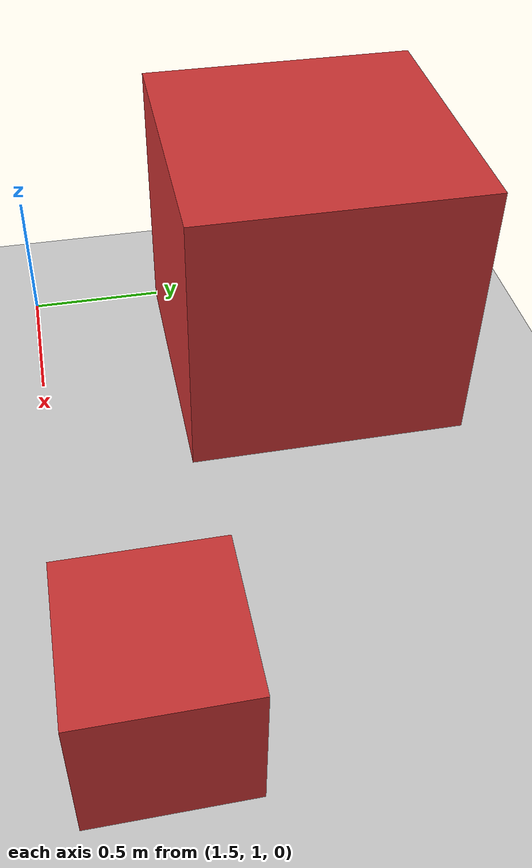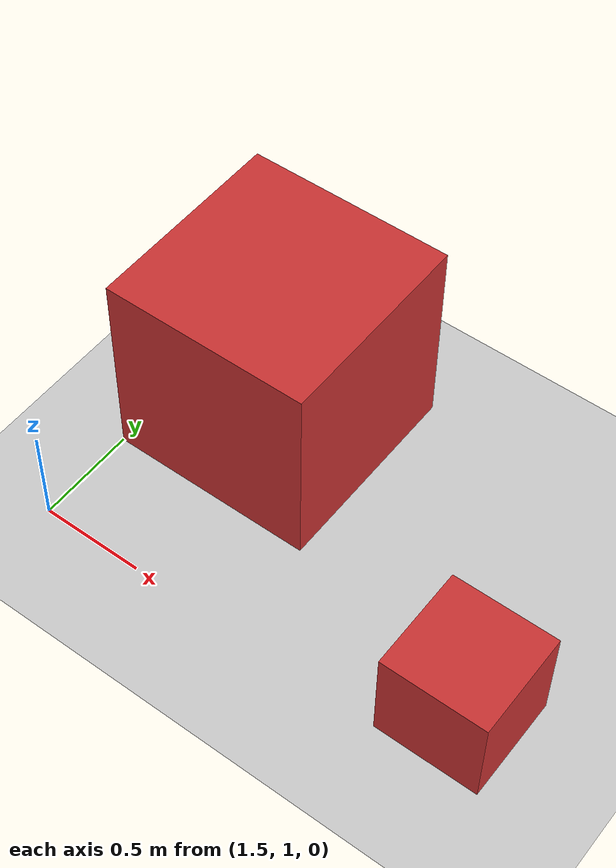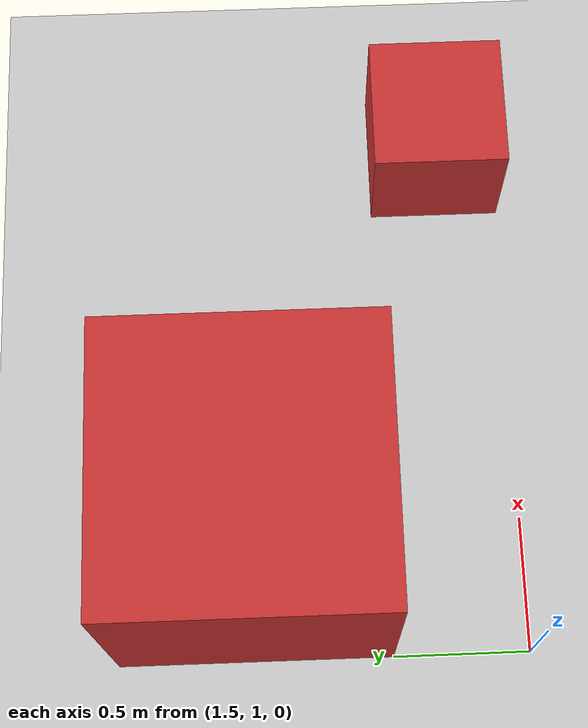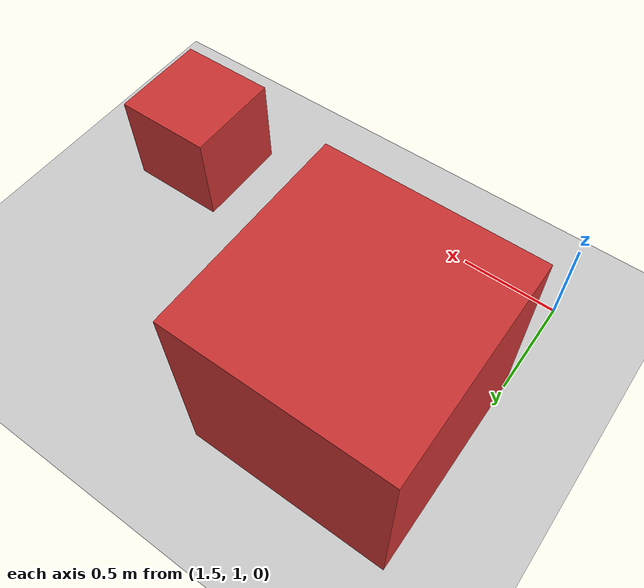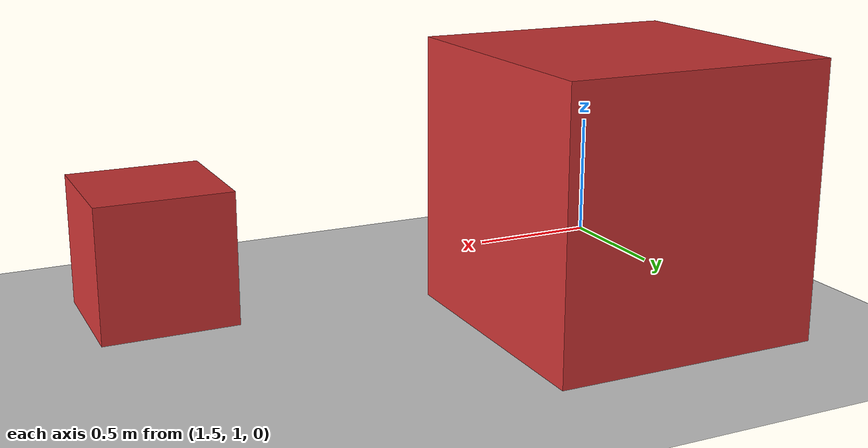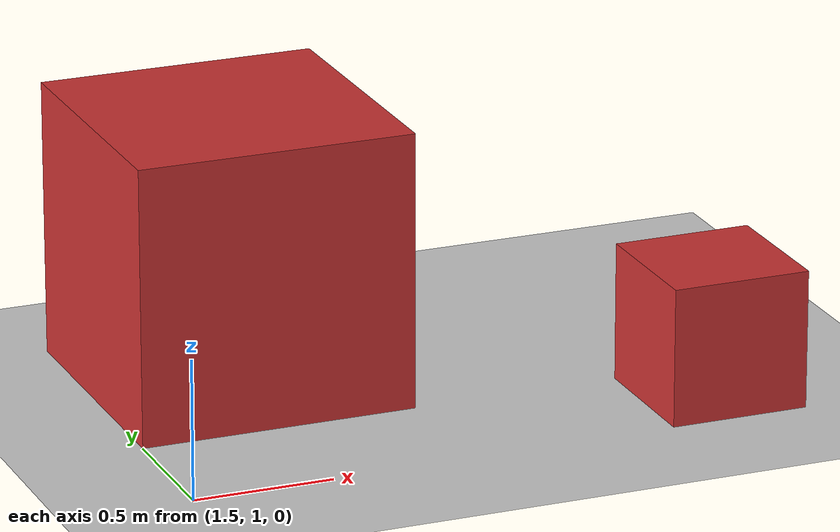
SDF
<?xml version="1.0"?>
<sdf version="1.6">
  <world name="default">
    <plugin
      filename="gz-sim-physics-system"
      name="gz::sim::systems::Physics">
    </plugin>
    <plugin
      filename="gz-sim-user-commands-system"
      name="gz::sim::systems::UserCommands">
    </plugin>
    <plugin
      filename="gz-sim-scene-broadcaster-system"
      name="gz::sim::systems::SceneBroadcaster">
    </plugin>
    <plugin
      filename="gz-sim-sensors-system"
      name="gz::sim::systems::Sensors">
      <render_engine>ogre2</render_engine>
    </plugin>
    <plugin
      filename="gz-sim-imu-system"
      name="gz::sim::systems::Imu">
    </plugin>

    <include>
      <uri>https://fuel.gazebosim.org/1.0/OpenRobotics/models/Ground Plane</uri>
    </include>

    <include>
      <uri>https://fuel.gazebosim.org/1.0/OpenRobotics/models/Sun</uri>
    </include>

    <model name='unit_box'>
      <static>true</static>
      <pose>2 2 0.5 0 0 0</pose>
      <link name='link'>
        <collision name='collision'>
          <geometry>
            <box>
              <size>1 1 1</size>
            </box>
          </geometry>
        </collision>
        <visual name='visual'>
           <material>
            <ambient>0.8 0.2 0.2 1</ambient>
            <diffuse>0.8 0.2 0.2 1</diffuse>
            <specular>0.8 0.2 0.2 1</specular>
          </material>
          <geometry>
            <box>
              <size>1 1 1</size>
            </box>
          </geometry>
        </visual>
      </link>
    </model>
    <model name='another_box'>
      <static>true</static>
      <pose>3.5 1.25 0.25 0 0 0</pose>
      <link name='link'>
        <collision name='collision'>
          <geometry>
            <box>
              <size>0.5 0.5 0.5</size>
            </box>
          </geometry>
        </collision>
        <visual name='visual'>
           <material>
            <ambient>0.8 0.2 0.2 1</ambient>
            <diffuse>0.8 0.2 0.2 1</diffuse>
            <specular>0.8 0.2 0.2 1</specular>
          </material>
          <geometry>
            <box>
              <size>0.5 0.5 0.5</size>
            </box>
          </geometry>
        </visual>
      </link>
    </model>
    <scene>
      <shadows>false</shadows>
    </scene>

    <gui fullscreen='0'>
      <camera name='user_camera'>
        <pose frame=''>0.319654 -0.235002 9.29441 0 1.5138 0.009599</pose>
        <view_controller>orbit</view_controller>
        <projection_type>perspective</projection_type>
      </camera>
    </gui>

    <physics type="ode">
      <real_time_update_rate>1000.0</real_time_update_rate>
      <max_step_size>0.001</max_step_size>
      <real_time_factor>1</real_time_factor>
      <ode>
        <solver>
          <type>quick</type>
          <iters>150</iters>
          <precon_iters>0</precon_iters>
          <sor>1.400000</sor>
          <use_dynamic_moi_rescaling>1</use_dynamic_moi_rescaling>
        </solver>
        <constraints>
          <cfm>0.00001</cfm>
          <erp>0.2</erp>
          <contact_max_correcting_vel>2000.000000</contact_max_correcting_vel>
          <contact_surface_layer>0.01000</contact_surface_layer>
        </constraints>
      </ode>
    </physics>

  </world>
</sdf>
